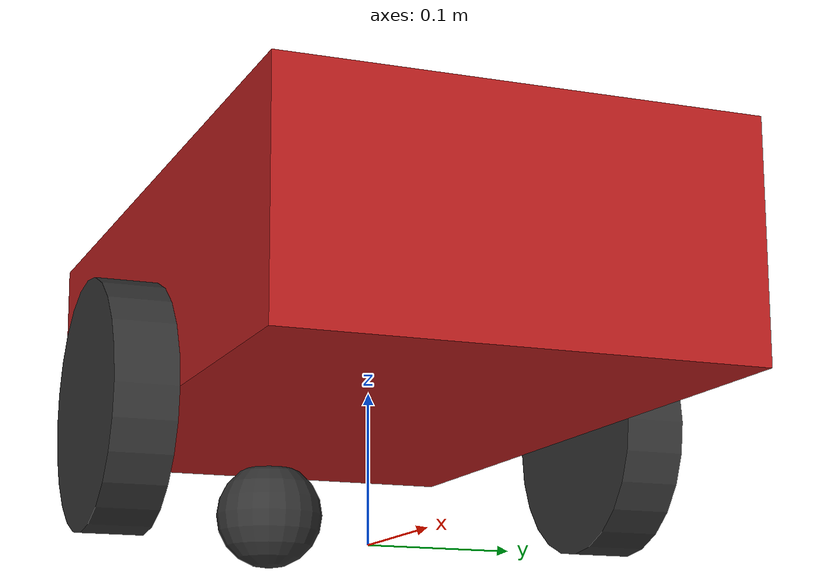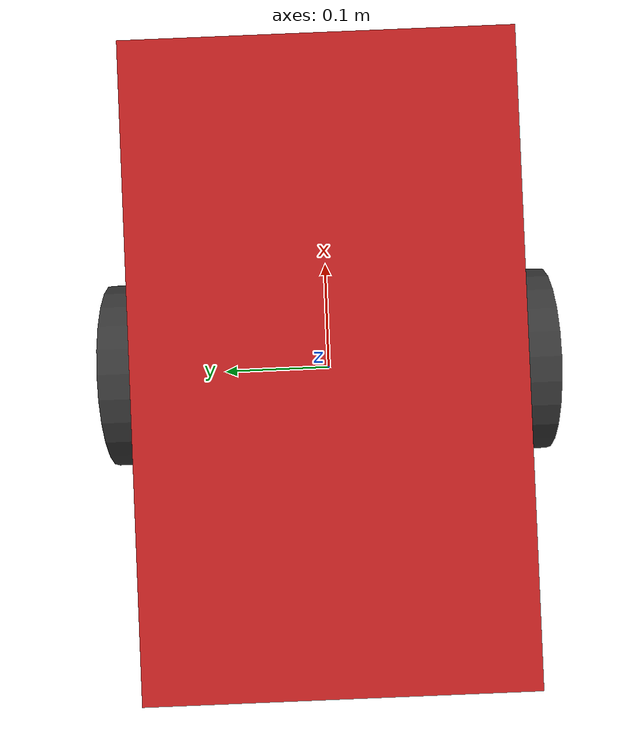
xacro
<?xml version="1.0"?>
<robot xmlns:xacro="http://www.ros.org/wiki/xacro">

  <!-- PROPERTIES -->
  <xacro:property name="base_length" value="0.5"/>
  <xacro:property name="base_width" value="0.3"/>
  <xacro:property name="base_height" value="0.15"/>
  <xacro:property name="wheel_radius" value="0.08"/>
  <xacro:property name="wheel_length" value="0.04"/>
  <xacro:property name="caster_wheel_radius" value="0.04"/>

  <!-- BASE FOOTPRINT -->
  <link name="base_footprint"/>

  <joint name="base_joint" type="fixed">
    <parent link="base_footprint"/>
    <child link="base_link"/>
    <origin xyz="0 0 ${wheel_radius}" rpy="0 0 0"/>
  </joint>

  <!-- BASE LINK -->
  <link name="base_link">
    <visual>
      <geometry>
        <box size="${base_length} ${base_width} ${base_height}"/>
      </geometry>
      <origin xyz="0 0 ${base_height/2}" rpy="0 0 0"/>
      <material name="Red">
        <color rgba="0.72 0.11 0.11 1"/>
      </material>
    </visual>
    <collision>
      <geometry>
        <box size="${base_length} ${base_width} ${base_height}"/>
      </geometry>
      <origin xyz="0 0 ${base_height/2}" rpy="0 0 0"/>
    </collision>
    <xacro:inertial_box mass="1.0" x="${base_length}" y="${base_width}" z="${base_height}"/>
  </link>

  <gazebo reference="base_link">
    <material>Gazebo/Red</material>
  </gazebo>

  <!-- SOL TEKERLEK -->
  <link name="left_wheel_link">
    <visual>
      <geometry>
        <cylinder radius="${wheel_radius}" length="${wheel_length}"/>
      </geometry>
      <material name="dark_grey">
        <color rgba="0.2 0.2 0.2 1"/>
      </material>
    </visual>
    <collision>
      <geometry>
        <cylinder radius="${wheel_radius}" length="${wheel_length}"/>
      </geometry>
    </collision>
    <xacro:inertial_cylinder mass="0.2" radius="${wheel_radius}" length="${wheel_length}"/>
  </link>

   <gazebo reference="left_wheel_link">
    <material>Gazebo/DarkGrey</material>
  </gazebo>

  <joint name="left_wheel_joint" type="continuous">
    <parent link="base_link"/>
    <child link="left_wheel_link"/>
    <origin xyz="0 ${(base_width+wheel_length)/2} 0" rpy="${-pi/2} 0 0"/>
    <axis xyz="0 0 1"/>
  </joint>

  <!-- SAĞ TEKERLEK -->
  <link name="right_wheel_link">
    <visual>
      <geometry>
        <cylinder radius="${wheel_radius}" length="${wheel_length}"/>
      </geometry>
      <material name="dark_grey">
        <color rgba="0.2 0.2 0.2 1"/>
      </material>
    </visual>
    <collision>
      <geometry>
        <cylinder radius="${wheel_radius}" length="${wheel_length}"/>
      </geometry>
    </collision>
    <xacro:inertial_cylinder mass="0.2" radius="${wheel_radius}" length="${wheel_length}"/>
  </link>

   <gazebo reference="right_wheel_link">
    <material>Gazebo/DarkGrey</material>
  </gazebo>

  <joint name="right_wheel_joint" type="continuous">
    <parent link="base_link"/>
    <child link="right_wheel_link"/>
    <origin xyz="0 ${-(base_width+wheel_length)/2} 0" rpy="${-pi/2} 0 0"/>
    <axis xyz="0 0 1"/>
  </joint>

  <!-- CASTER WHEEL -->
  <link name="caster_wheel_link">
    <visual>
      <geometry>
        <sphere radius="${caster_wheel_radius}"/>
      </geometry>
      <material name="dark_grey">
        <color rgba="0.2 0.2 0.2 1"/>
      </material>
    </visual>
    <collision>
      <geometry>
        <sphere radius="${caster_wheel_radius}"/>
      </geometry>
    </collision>
    <xacro:inertial_sphere mass="0.1" radius="${caster_wheel_radius}"/>
  </link>

  <gazebo reference="caster_wheel_link">
    <material>Gazebo/DarkGrey</material>
    <mu1 value="0.1"/>
    <mu2 value="0.1"/>
  </gazebo>

  <joint name="caster_wheel_joint" type="fixed">
    <parent link="base_link"/>
    <child link="caster_wheel_link"/>
    <origin xyz="${-base_length/2+caster_wheel_radius} 0 ${-(base_height/2-caster_wheel_radius)}" rpy="0 0 0"/>
  </joint>

  <gazebo>
    <plugin filename="gz-sim-diff-drive-system"
            name="gz::sim::systems::DiffDrive">
      <left_joint>left_wheel_joint</left_joint>
      <right_joint>right_wheel_joint</right_joint>
      <wheel_separation>${base_width+wheel_length}</wheel_separation>
      <wheel_radius>${wheel_radius}</wheel_radius>
      <odom_publish_frequency>10</odom_publish_frequency>
      <frame_id>odom</frame_id>
      <child_frame_id>base_footprint</child_frame_id>
    </plugin>
  </gazebo>

  <!-- JOINT STATE PUBLISHER (tekerlekler) -->
  <gazebo>
    <plugin filename="gz-sim-joint-state-publisher-system"
            name="gz::sim::systems::JointStatePublisher">
      <joint_name>left_wheel_joint</joint_name>
      <joint_name>right_wheel_joint</joint_name>
    </plugin>
  </gazebo>

  </robot>
